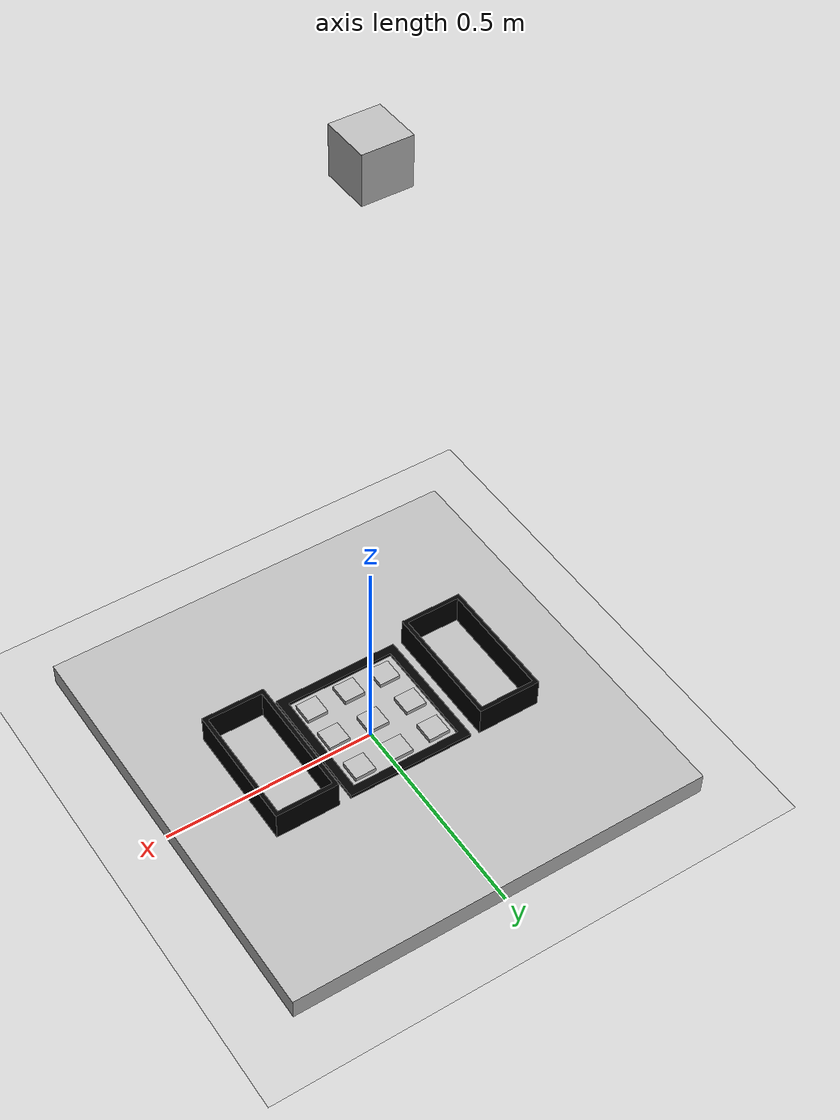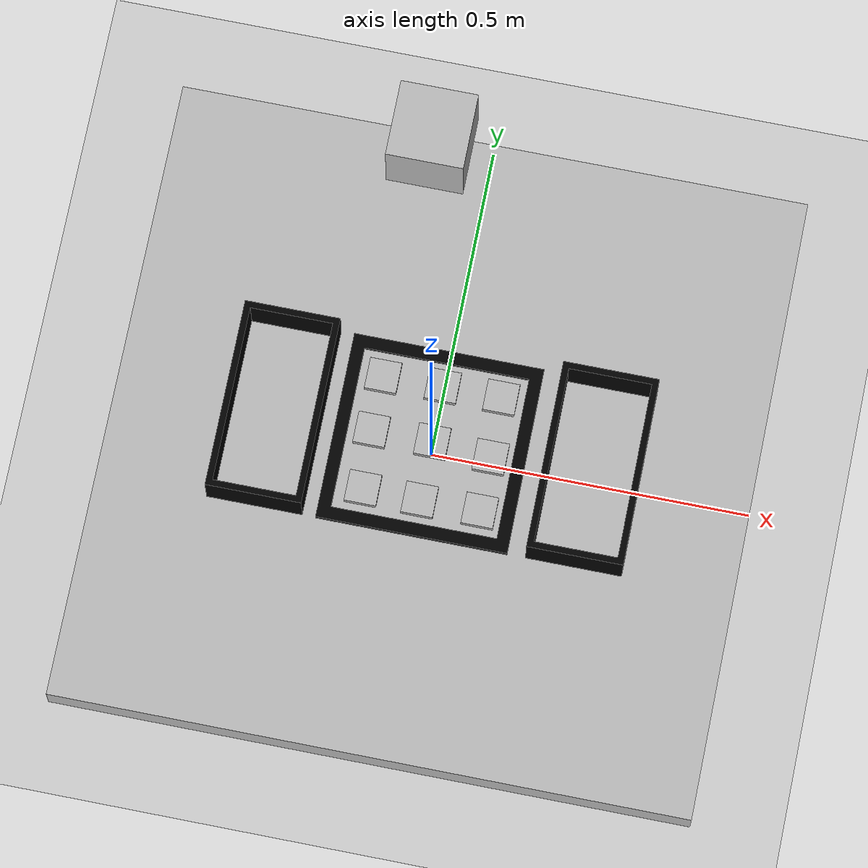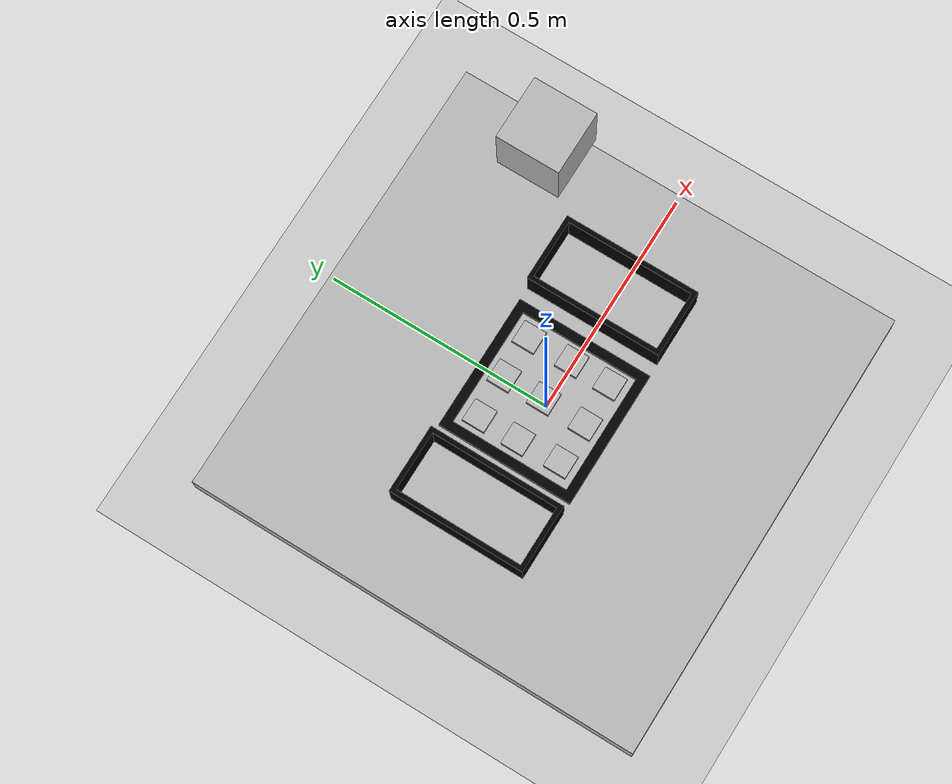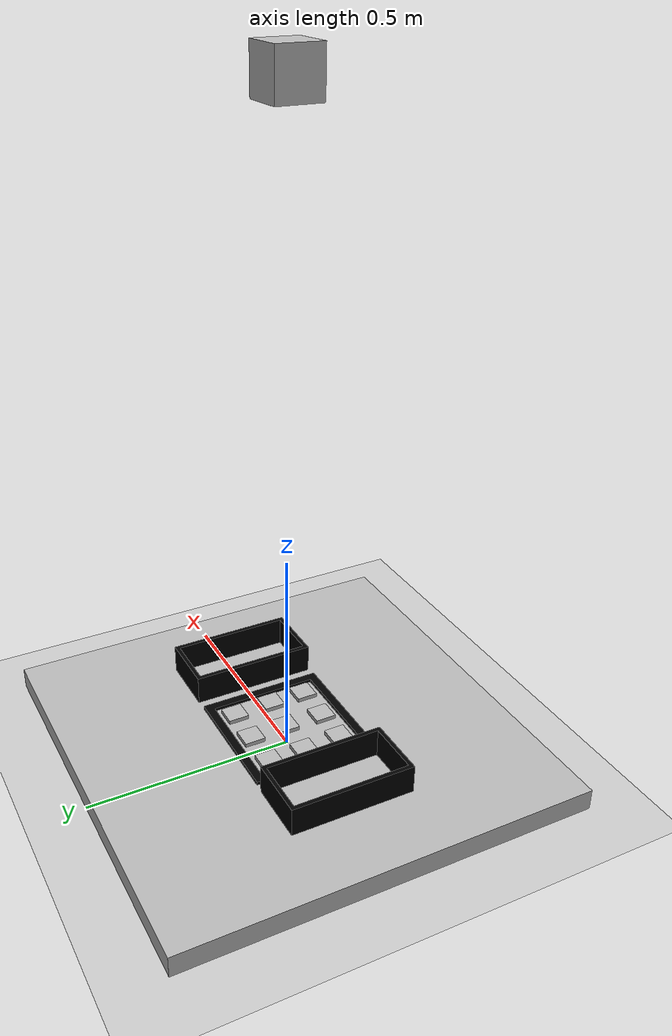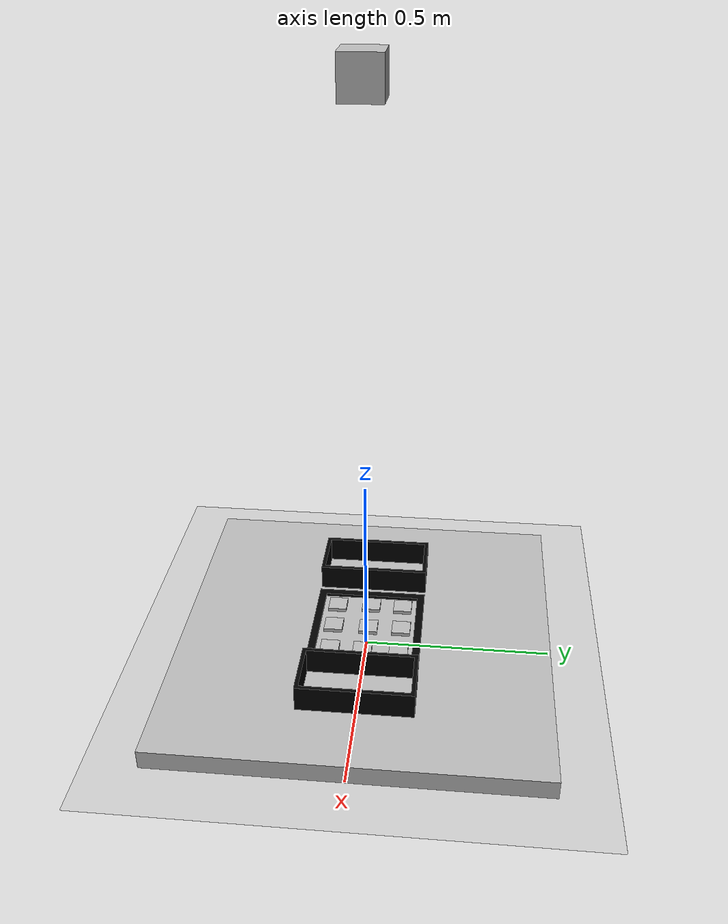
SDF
<sdf version="1.6">
 <world name="default">
  <model name="ground_plane">
   <static>1</static>
   <link name="link">
    <collision name="collision">
     <geometry><plane><normal>0 0 1</normal><size>100 100</size></plane></geometry>
     <surface>
      <contact><collide_bitmask>65535</collide_bitmask></contact>
      <friction><ode><mu>100</mu><mu2>50</mu2></ode></friction>
     </surface>
    </collision>
    <visual name="visual">
     <cast_shadows>0</cast_shadows>
     <geometry><plane><normal>0 0 1</normal><size>100 100</size></plane></geometry>
     <material>
      <script><uri>file://media/materials/scripts/gazebo.material</uri><name>Gazebo/Grey</name></script>
     </material>
    </visual>
   </link>
  </model>
  <light name="sun" type="directional">
   <pose>0 0 10 0 -0 0</pose>
   <diffuse>0.8 0.8 0.8 1</diffuse>
   <specular>0.2 0.2 0.2 1</specular>
   <attenuation>
    <range>1000</range>
    <constant>0.9</constant>
    <linear>0.01</linear>
    <quadratic>0.001</quadratic>
   </attenuation>
   <direction>-0.5 0.1 -0.9</direction>
  </light>
  <gravity>0 0 -9.8</gravity>
  <magnetic_field>6e-06 2.3e-05 -4.2e-05</magnetic_field>
  <atmosphere type="adiabatic"/>
  <physics name="default_physics" default="0" type="ode">
   <max_step_size>0.001</max_step_size>
   <real_time_factor>1</real_time_factor>
   <real_time_update_rate>1000</real_time_update_rate>
  </physics>
  <scene><ambient>0.4 0.4 0.4 1</ambient><background>0.7 0.7 0.7 1</background><shadows>1</shadows></scene>
  <audio><device>default</device></audio>
  <spherical_coordinates>
   <surface_model>EARTH_WGS84</surface_model>
   <latitude_deg>0</latitude_deg>
   <longitude_deg>0</longitude_deg>
   <elevation>0</elevation>
   <heading_deg>0</heading_deg>
  </spherical_coordinates>
  <model name="dropzone_cross">
   <pose>0.25 0.05 0.01 0 -0 0</pose>
   <link name="link">
    <inertial>
     <mass>1</mass>
     <inertia>
      <ixx>0.0083</ixx>
      <iyy>0.0093375</iyy>
      <izz>0.0026975</izz>
      <ixy>0</ixy>
      <ixz>0</ixz>
      <iyz>0</iyz>
     </inertia>
    </inertial>
    <collision name="collision">
     <geometry><mesh><uri>model://dropzone/meshes/dropzone.dae</uri></mesh></geometry>
    </collision>
    <visual name="visual">
     <geometry><mesh><uri>model://dropzone/meshes/dropzone.dae</uri></mesh></geometry>
     <material>
      <ambient>0 0 0 1</ambient>
      <diffuse>0 0 0 1</diffuse>
      <specular>0 0 0 0</specular>
      <emissive>0 0 0 1</emissive>
     </material>
    </visual>
   </link>
   <static>1</static>
  </model>
  <model name="dropzone_cross_0">
   <pose>-0.25 0.05 0.01 0 -0 0</pose>
   <link name="link">
    <inertial>
     <mass>1</mass>
     <inertia>
      <ixx>0.0083</ixx>
      <iyy>0.0093375</iyy>
      <izz>0.0026975</izz>
      <ixy>0</ixy>
      <ixz>0</ixz>
      <iyz>0</iyz>
     </inertia>
    </inertial>
    <collision name="collision">
     <geometry><mesh><uri>model://dropzone/meshes/dropzone.dae</uri></mesh></geometry>
    </collision>
    <visual name="visual">
     <geometry><mesh><uri>model://dropzone/meshes/dropzone.dae</uri></mesh></geometry>
     <material>
      <ambient>0 0 0 1</ambient>
      <diffuse>0 0 0 1</diffuse>
      <specular>0 0 0 0</specular>
      <emissive>0 0 0 1</emissive>
     </material>
    </visual>
   </link>
   <static>1</static>
  </model>
  <model name="field">
   <pose>-0.154 -0.15 0.05 0 -0 0</pose>
   <static>1</static>
   <link name="link">
    <inertial>
     <mass>1</mass>
     <inertia>
      <ixx>0.00748868</ixx>
      <iyy>0.00748868</iyy>
      <izz>0.01494</izz>
      <ixy>0</ixy>
      <ixz>0</ixz>
      <iyz>0</iyz>
     </inertia>
    </inertial>
    <collision name="collision">
     <geometry><mesh><uri>model://field/meshes/Field.dae</uri></mesh></geometry>
    </collision>
    <visual name="visual">
     <geometry><mesh><uri>model://field/meshes/Field.dae</uri></mesh></geometry>
     <material>
      <ambient>0 0 0 1</ambient>
      <diffuse>0 0 0 1</diffuse>
      <specular>0 0 0 0</specular>
      <emissive>0 1 0 1</emissive>
     </material>
    </visual>
   </link>
   <static>1</static>
  </model>
  <model name="naught_object">
   <link name="base">
    <inertial>
     <mass>100</mass>
     <inertia><ixx>1</ixx><ixy>0</ixy><ixz>0</ixz><iyy>1</iyy><iyz>0</iyz><izz>1</izz></inertia>
    </inertial>
    <visual name="naught_object">
     <geometry><box><size>0.05 0.05 0.01</size></box></geometry>
     <material>
      <script>
       <uri>model://naught_object/materials/scripts</uri>
       <uri>model://naught_object/materials/textures</uri>
       <name>NaughtTexture</name>
      </script>
     </material>
    </visual>
    <collision name="naught_object_col_box">
     <pose>0 0 0.01 0 -0 0</pose>
     <geometry><box><size>0.05 0.05 0.01</size></box></geometry>
    </collision>
   </link>
   <pose>-0.000837 0.005756 0.055 -0 -0 -2.3e-05</pose>
  </model>
  <model name="cross_object">
   <link name="base">
    <inertial>
     <mass>100</mass>
     <inertia><ixx>1</ixx><ixy>0</ixy><ixz>0</ixz><iyy>1</iyy><iyz>0</iyz><izz>1</izz></inertia>
    </inertial>
    <visual name="cross_object">
     <geometry><box><size>0.05 0.05 0.01</size></box></geometry>
     <material>
      <script>
       <uri>model://cross_object/materials/scripts</uri>
       <uri>model://cross_object/materials/textures</uri>
       <name>CrossTexture</name>
      </script>
     </material>
    </visual>
    <collision name="cross_object_col_box">
     <pose>0 0 0.01 0 -0 0</pose>
     <geometry><box><size>0.05 0.05 0.01</size></box></geometry>
    </collision>
   </link>
   <pose>-0.090798 -0.088633 0.055 -0 -0 -1e-05</pose>
  </model>
  <model name="Field Base_0">
   <link name="base">
    <inertial><mass>100</mass></inertial>
    <visual name="base">
     <geometry><box><size>1 1 0.1</size></box></geometry>
     <material>
      <script>
       <uri>model://base/materials/scripts</uri>
       <uri>model://base/materials/textures</uri>
       <name>gridTexture</name>
      </script>
     </material>
    </visual>
    <collision name="base_col_box_on_ground">
     <pose>0 0 0.01 0 -0 0</pose>
     <geometry><box><size>1 1 0.1</size></box></geometry>
    </collision>
   </link>
   <static>1</static>
  </model>
  <model name="naught_object_clone">
   <link name="base">
    <inertial>
     <mass>100</mass>
     <inertia><ixx>1</ixx><ixy>0</ixy><ixz>0</ixz><iyy>1</iyy><iyz>0</iyz><izz>1</izz></inertia>
    </inertial>
    <visual name="naught_object">
     <geometry><box><size>0.05 0.05 0.01</size></box></geometry>
     <material>
      <script>
       <uri>model://naught_object/materials/scripts</uri>
       <uri>model://naught_object/materials/textures</uri>
       <name>NaughtTexture</name>
      </script>
     </material>
    </visual>
    <collision name="naught_object_col_box">
     <pose>0 0 0.01 0 -0 0</pose>
     <geometry><box><size>0.05 0.05 0.01</size></box></geometry>
    </collision>
   </link>
   <pose>-0.096296 0.005505 0.055 -0 -0 -2.3e-05</pose>
  </model>
  <model name="naught_object_clone_0">
   <link name="base">
    <inertial>
     <mass>100</mass>
     <inertia><ixx>1</ixx><ixy>0</ixy><ixz>0</ixz><iyy>1</iyy><iyz>0</iyz><izz>1</izz></inertia>
    </inertial>
    <visual name="naught_object">
     <geometry><box><size>0.05 0.05 0.01</size></box></geometry>
     <material>
      <script>
       <uri>model://naught_object/materials/scripts</uri>
       <uri>model://naught_object/materials/textures</uri>
       <name>NaughtTexture</name>
      </script>
     </material>
    </visual>
    <collision name="naught_object_col_box">
     <pose>0 0 0.01 0 -0 0</pose>
     <geometry><box><size>0.05 0.05 0.01</size></box></geometry>
    </collision>
   </link>
   <pose>-0.095985 0.093937 0.055 -0 -0 -2.3e-05</pose>
  </model>
  <model name="cross_object_clone">
   <link name="base">
    <inertial>
     <mass>100</mass>
     <inertia><ixx>1</ixx><ixy>0</ixy><ixz>0</ixz><iyy>1</iyy><iyz>0</iyz><izz>1</izz></inertia>
    </inertial>
    <visual name="cross_object">
     <geometry><box><size>0.05 0.05 0.01</size></box></geometry>
     <material>
      <script>
       <uri>model://cross_object/materials/scripts</uri>
       <uri>model://cross_object/materials/textures</uri>
       <name>CrossTexture</name>
      </script>
     </material>
    </visual>
    <collision name="cross_object_col_box">
     <pose>0 0 0.01 0 -0 0</pose>
     <geometry><box><size>0.05 0.05 0.01</size></box></geometry>
    </collision>
   </link>
   <pose>-0.002314 0.096104 0.055 -0 -0 -1e-05</pose>
  </model>
  <model name="cross_object_clone_0">
   <link name="base">
    <inertial>
     <mass>100</mass>
     <inertia><ixx>1</ixx><ixy>0</ixy><ixz>0</ixz><iyy>1</iyy><iyz>0</iyz><izz>1</izz></inertia>
    </inertial>
    <visual name="cross_object">
     <geometry><box><size>0.05 0.05 0.01</size></box></geometry>
     <material>
      <script>
       <uri>model://cross_object/materials/scripts</uri>
       <uri>model://cross_object/materials/textures</uri>
       <name>CrossTexture</name>
      </script>
     </material>
    </visual>
    <collision name="cross_object_col_box">
     <pose>0 0 0.01 0 -0 0</pose>
     <geometry><box><size>0.05 0.05 0.01</size></box></geometry>
    </collision>
   </link>
   <pose>0.090059 0.095512 0.055 -0 -0 -1e-05</pose>
  </model>
  <model name="cross_object_clone_1">
   <link name="base">
    <inertial>
     <mass>100</mass>
     <inertia><ixx>1</ixx><ixy>0</ixy><ixz>0</ixz><iyy>1</iyy><iyz>0</iyz><izz>1</izz></inertia>
    </inertial>
    <visual name="cross_object">
     <geometry><box><size>0.05 0.05 0.01</size></box></geometry>
     <material>
      <script>
       <uri>model://cross_object/materials/scripts</uri>
       <uri>model://cross_object/materials/textures</uri>
       <name>CrossTexture</name>
      </script>
     </material>
    </visual>
    <collision name="cross_object_col_box">
     <pose>0 0 0.01 0 -0 0</pose>
     <geometry><box><size>0.05 0.05 0.01</size></box></geometry>
    </collision>
   </link>
   <pose>-0.001697 -0.089754 0.055 -0 -0 -1e-05</pose>
  </model>
  <model name="naught_object_clone_1">
   <link name="base">
    <inertial>
     <mass>100</mass>
     <inertia><ixx>1</ixx><ixy>0</ixy><ixz>0</ixz><iyy>1</iyy><iyz>0</iyz><izz>1</izz></inertia>
    </inertial>
    <visual name="naught_object">
     <geometry><box><size>0.05 0.05 0.01</size></box></geometry>
     <material>
      <script>
       <uri>model://naught_object/materials/scripts</uri>
       <uri>model://naught_object/materials/textures</uri>
       <name>NaughtTexture</name>
      </script>
     </material>
    </visual>
    <collision name="naught_object_col_box">
     <pose>0 0 0.01 0 -0 0</pose>
     <geometry><box><size>0.05 0.05 0.01</size></box></geometry>
    </collision>
   </link>
   <pose>0.092479 -0.088825 0.055 -0 -0 -2.3e-05</pose>
  </model>
  <model name="cross_object_clone_1_clone">
   <link name="base">
    <inertial>
     <mass>100</mass>
     <inertia><ixx>1</ixx><ixy>0</ixy><ixz>0</ixz><iyy>1</iyy><iyz>0</iyz><izz>1</izz></inertia>
    </inertial>
    <visual name="cross_object">
     <geometry><box><size>0.05 0.05 0.01</size></box></geometry>
     <material>
      <script>
       <uri>model://cross_object/materials/scripts</uri>
       <uri>model://cross_object/materials/textures</uri>
       <name>CrossTexture</name>
      </script>
     </material>
    </visual>
    <collision name="cross_object_col_box">
     <pose>0 0 0.01 0 -0 0</pose>
     <geometry><box><size>0.05 0.05 0.01</size></box></geometry>
    </collision>
   </link>
   <pose>0.092375 -0.001307 0.055 -0 -0 -1e-05</pose>
  </model>
  <model name="camera">
   <link name="link">
    <inertial>
     <mass>0.1</mass>
     <inertia>
      <ixx>0.000166667</ixx>
      <iyy>0.000166667</iyy>
      <izz>0.000166667</izz>
      <ixy>0</ixy>
      <ixz>0</ixz>
      <iyz>0</iyz>
     </inertia>
    </inertial>
    <sensor name="camera" type="camera">
     <camera name="__default__">
      <horizontal_fov>1.047</horizontal_fov>
      <image><width>1280</width><height>720</height></image>
      <clip><near>0.1</near><far>100</far></clip>
     </camera>
     <always_on>1</always_on>
     <update_rate>3</update_rate>
     <visualize>1</visualize>
     <plugin name="camera_controller" filename="libgazebo_ros_camera.so">
      <alwaysOn>1</alwaysOn>
      <updateRate>0.0</updateRate>
      <cameraName>test/camera</cameraName>
      <imageTopicName>image_raw</imageTopicName>
      <cameraInfoTopicName>camera_info</cameraInfoTopicName>
      <frameName>left_camera_optical_frame</frameName>
      <hackBaseline>0.07</hackBaseline>
      <distortionK1>0.0</distortionK1>
      <distortionK2>0.0</distortionK2>
      <distortionK3>0.0</distortionK3>
      <distortionT1>0.0</distortionT1>
      <distortionT2>0.0</distortionT2>
     </plugin>
    </sensor>
    <visual name="visual">
     <geometry><box><size>0.1 0.1 0.1</size></box></geometry>
     <material><shader type="pixel"/></material>
    </visual>
    <collision name="collision">
     <geometry><box><size>0.1 0.1 0.1</size></box></geometry>
     <surface>
      <friction>
       <ode><mu>1</mu><mu2>1</mu2><fdir1>0 0 0</fdir1><slip1>0</slip1><slip2>0</slip2></ode>
       <torsional>
        <coefficient>1</coefficient>
        <patch_radius>0</patch_radius>
        <surface_radius>0</surface_radius>
        <use_patch_radius>1</use_patch_radius>
        <ode><slip>0</slip></ode>
       </torsional>
      </friction>
      <bounce><restitution_coefficient>0</restitution_coefficient><threshold>1e+06</threshold></bounce>
      <contact>
       <collide_without_contact>0</collide_without_contact>
       <collide_without_contact_bitmask>1</collide_without_contact_bitmask>
       <collide_bitmask>1</collide_bitmask>
       <ode>
        <soft_cfm>0</soft_cfm>
        <soft_erp>0.2</soft_erp>
        <kp>1e+13</kp>
        <kd>1</kd>
        <max_vel>0.01</max_vel>
        <min_depth>0</min_depth>
       </ode>
       <bullet>
        <split_impulse>1</split_impulse>
        <split_impulse_penetration_threshold>-0.01</split_impulse_penetration_threshold>
        <soft_cfm>0</soft_cfm>
        <soft_erp>0.2</soft_erp>
        <kp>1e+13</kp>
        <kd>1</kd>
       </bullet>
      </contact>
     </surface>
    </collision>
   </link>
   <static>1</static>
   <pose>0 0 1.5 -1.57079 1.57079 3.14159</pose>
  </model>
 </world>
</sdf>
